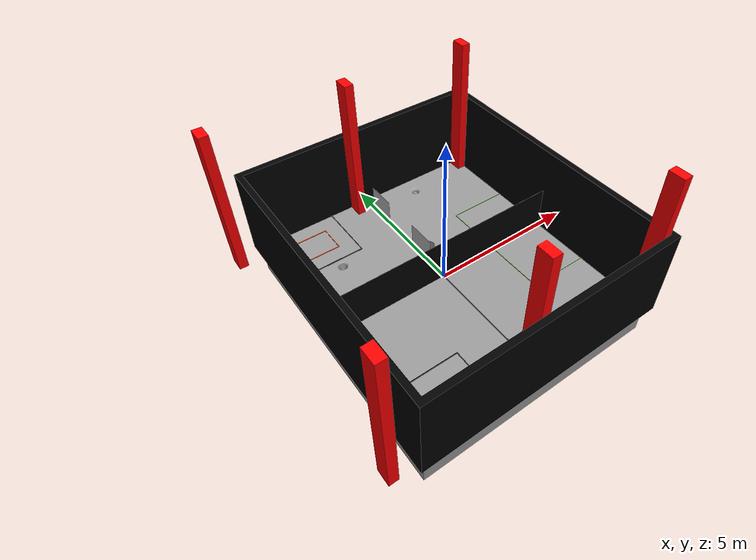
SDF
<?xml version="1.0" ?>
<sdf version='1.7'>
  <model name='UCF_field'>
    <static>true</static>
    <pose>0 0 0 0 0 0</pose>
      <link name='field'>
        <collision name="collision">
          <geometry>
            <mesh>
              <uri>meshes/UCF_basic.stl</uri>
            </mesh>
          </geometry>
        </collision>
        <visual name="visual">
          <geometry>
            <mesh>
              <uri>meshes/UCF_field.dae</uri>
            </mesh>
          </geometry>
        </visual>
      </link>

      <!-- orientation like rule book, bottom field. plus x, plus y from bottom right-->

      <frame name="bottom_bottom_right">
        <pose>4.07 -4.57 0 0 0 0</pose>
      </frame>

      <!-- Tags in the starting zone. This assumes that we are placing 2 tags on the wall. -->
      <include>
        <uri>/src/gazebo/ros_gz_description/models/Apriltag36_11_00001</uri>
        <pose relative_to='bottom_bottom_right'>0 3.57 0.4 1.57 0 -1.57</pose> <!-- 3.57 + beaconwidth/2 to center it -->
        <name>AprilTag_1_Bottom</name>
      </include>

      <include>
        <uri>/src/gazebo/ros_gz_description/models/Apriltag36_11_00002</uri>
        <pose relative_to='bottom_bottom_right'>0 3.3541 0.4 1.57 0 -1.57</pose>
        <name>AprilTag_2_Bottom</name>
      </include>

      <!-- orientation like rule book, top field. plus x, plus y from bottom right-->

      <frame name="top_bottom_right">
        <pose>4.07 0 0 0 0 0</pose>
      </frame>

      <!-- Tags in the starting zone. This assumes that we are placing 2 tags on the wall. -->
      <include>
        <uri>/src/gazebo/ros_gz_description/models/Apriltag36_11_00001</uri>
        <pose relative_to='top_bottom_right'>0 1.2159 0.4 1.57 0 -1.57</pose>
        <name>AprilTag_1_Top</name>
      </include>

      <include>
        <uri>/src/gazebo/ros_gz_description/models/Apriltag36_11_00002</uri>
        <pose relative_to='top_bottom_right'>0 1 0.4 1.57 0 -1.57</pose>
        <name>AprilTag_2_Top</name>
      </include>

  </model>
</sdf>

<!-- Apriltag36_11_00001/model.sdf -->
<sdf version='1.6'>
  <model name='Apriltag36_11_00001'>
    <link name='main'>
    <pose frame=''>0 0 0 0 0 0</pose>
      <visual name='main_Visual'>
        <geometry>
          <mesh>
            <uri>materials/meshes/apriltag.dae</uri>
          </mesh>
        </geometry>
      </visual>
     </link>
    <static>1</static>
  </model>
</sdf>

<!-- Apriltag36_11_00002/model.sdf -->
<sdf version='1.6'>
  <model name='Apriltag36_11_00002'>
    <link name='main'>
    <pose frame=''>0 0 0 0 0 0</pose>
      <visual name='main_Visual'>
        <geometry>
          <box>
          <size>0.17 0.17 0.01</size>
          </box>
        </geometry>
           <material>
          <script>
            <uri>model://Apriltag36_11_00002/materials/scripts</uri>
            <uri>model://Apriltag36_11_00002/materials/textures</uri>
            <name>Apriltag36_11_00002</name>
          </script>
        </material>
      </visual>
     </link>
    <static>1</static>
  </model>
</sdf>
